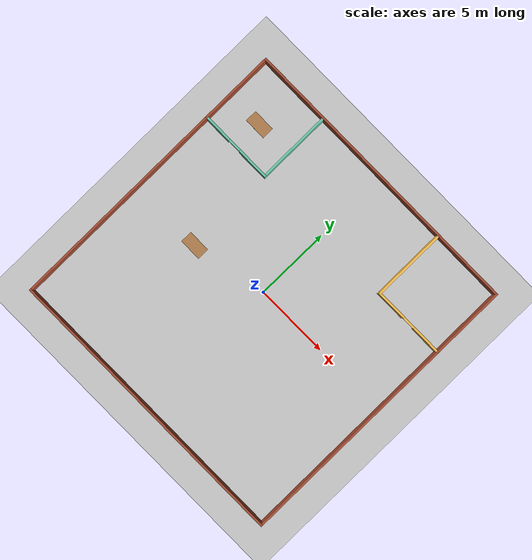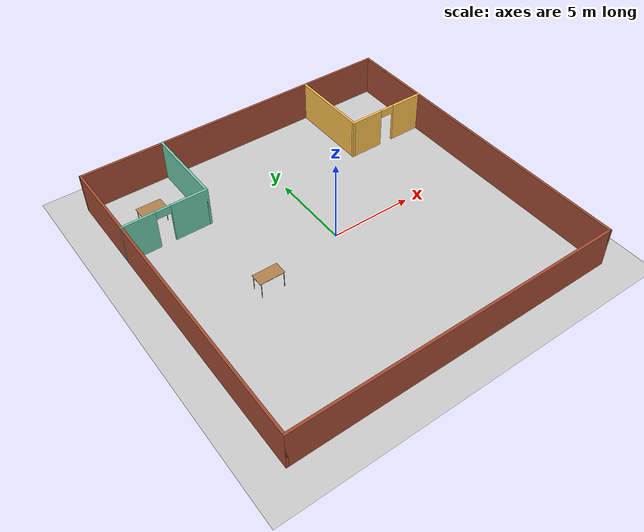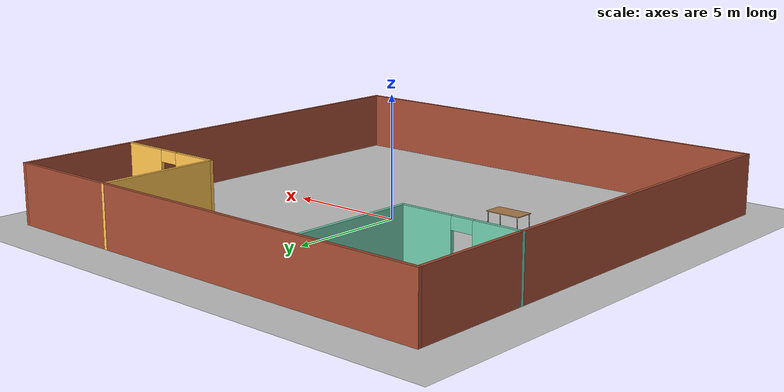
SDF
<sdf version="1.6">
 <world name="default">
  <model name="ground_plane">
   <static>1</static>
   <link name="link">
    <collision name="collision">
     <geometry><plane><normal>0 0 1</normal><size>100 100</size></plane></geometry>
     <surface><friction><ode><mu>100</mu><mu2>50</mu2></ode></friction></surface>
    </collision>
    <visual name="visual">
     <cast_shadows>0</cast_shadows>
     <geometry><plane><normal>0 0 1</normal><size>100 100</size></plane></geometry>
     <material>
      <script><uri>file://media/materials/scripts/gazebo.material</uri><name>Gazebo/Grey</name></script>
     </material>
    </visual>
   </link>
  </model>
  <model name="Building">
   <link name="Wall_10">
    <collision name="Wall_10_Collision">
     <geometry><box><size>20.15 0.15 2.5</size></box></geometry>
     <pose>0 0 1.25 0 -0 0</pose>
    </collision>
    <visual name="Wall_10_Visual">
     <pose>0 0 1.25 0 -0 0</pose>
     <geometry><box><size>20.15 0.15 2.5</size></box></geometry>
     <material>
      <script><uri>file://media/materials/scripts/gazebo.material</uri><name>Gazebo/Bricks</name></script>
      <ambient>1 1 1 1</ambient>
     </material>
     <meta><layer>0</layer></meta>
    </visual>
    <pose>0 -10 0 0 -0 0</pose>
   </link>
   <link name="Wall_11">
    <collision name="Wall_11_Collision">
     <geometry><box><size>20.15 0.15 2.5</size></box></geometry>
     <pose>0 0 1.25 0 -0 0</pose>
    </collision>
    <visual name="Wall_11_Visual">
     <pose>0 0 1.25 0 -0 0</pose>
     <geometry><box><size>20.15 0.15 2.5</size></box></geometry>
     <material>
      <script><uri>file://media/materials/scripts/gazebo.material</uri><name>Gazebo/Bricks</name></script>
      <ambient>1 1 1 1</ambient>
     </material>
     <meta><layer>0</layer></meta>
    </visual>
    <pose>10 0 0 0 -0 1.5708</pose>
   </link>
   <link name="Wall_12">
    <collision name="Wall_12_Collision">
     <geometry><box><size>20.15 0.15 2.5</size></box></geometry>
     <pose>0 0 1.25 0 -0 0</pose>
    </collision>
    <visual name="Wall_12_Visual">
     <pose>0 0 1.25 0 -0 0</pose>
     <geometry><box><size>20.15 0.15 2.5</size></box></geometry>
     <material>
      <script><uri>file://media/materials/scripts/gazebo.material</uri><name>Gazebo/Bricks</name></script>
      <ambient>1 1 1 1</ambient>
     </material>
     <meta><layer>0</layer></meta>
    </visual>
    <pose>0 10 0 0 -0 3.14159</pose>
   </link>
   <link name="Wall_13">
    <collision name="Wall_13_Collision">
     <geometry><box><size>20.15 0.15 2.5</size></box></geometry>
     <pose>0 0 1.25 0 -0 0</pose>
    </collision>
    <visual name="Wall_13_Visual">
     <pose>0 0 1.25 0 -0 0</pose>
     <geometry><box><size>20.15 0.15 2.5</size></box></geometry>
     <material>
      <script><uri>file://media/materials/scripts/gazebo.material</uri><name>Gazebo/Bricks</name></script>
      <ambient>1 1 1 1</ambient>
     </material>
     <meta><layer>0</layer></meta>
    </visual>
    <pose>-10 0 0 0 -0 -1.5708</pose>
   </link>
   <link name="Wall_2">
    <pose>7.5 5 0 0 -0 3.14159</pose>
    <visual name="Wall_2_Visual_0">
     <pose>-1.5125 0 1.25 0 -0 0</pose>
     <geometry><box><size>2.125 0.15 2.5</size></box></geometry>
     <material>
      <script><uri>file://media/materials/scripts/gazebo.material</uri><name>Gazebo/Grey</name></script>
      <ambient>1 0.764706 0.305882 1</ambient>
     </material>
     <meta><layer>0</layer></meta>
    </visual>
    <collision name="Wall_2_Collision_0">
     <geometry><box><size>2.125 0.15 2.5</size></box></geometry>
     <pose>-1.5125 0 1.25 0 -0 0</pose>
    </collision>
    <visual name="Wall_2_Visual_1">
     <pose>1.5125 0 1.25 0 -0 0</pose>
     <geometry><box><size>2.125 0.15 2.5</size></box></geometry>
     <material>
      <script><uri>file://media/materials/scripts/gazebo.material</uri><name>Gazebo/Grey</name></script>
      <ambient>1 0.764706 0.305882 1</ambient>
     </material>
     <meta><layer>0</layer></meta>
    </visual>
    <collision name="Wall_2_Collision_1">
     <geometry><box><size>2.125 0.15 2.5</size></box></geometry>
     <pose>1.5125 0 1.25 0 -0 0</pose>
    </collision>
    <visual name="Wall_2_Visual_2">
     <pose>-0 0 2.25 0 -0 0</pose>
     <geometry><box><size>0.9 0.15 0.5</size></box></geometry>
     <material>
      <script><uri>file://media/materials/scripts/gazebo.material</uri><name>Gazebo/Grey</name></script>
      <ambient>1 0.764706 0.305882 1</ambient>
     </material>
     <meta><layer>0</layer></meta>
    </visual>
    <collision name="Wall_2_Collision_2">
     <geometry><box><size>0.9 0.15 0.5</size></box></geometry>
     <pose>-0 0 2.25 0 -0 0</pose>
    </collision>
   </link>
   <link name="Wall_3">
    <collision name="Wall_3_Collision">
     <geometry><box><size>5.15 0.15 2.5</size></box></geometry>
     <pose>0 0 1.25 0 -0 0</pose>
    </collision>
    <visual name="Wall_3_Visual">
     <pose>0 0 1.25 0 -0 0</pose>
     <geometry><box><size>5.15 0.15 2.5</size></box></geometry>
     <material>
      <script><uri>file://media/materials/scripts/gazebo.material</uri><name>Gazebo/Grey</name></script>
      <ambient>1 0.764706 0.305882 1</ambient>
     </material>
     <meta><layer>0</layer></meta>
    </visual>
    <pose>5 7.5 0 0 -0 1.5708</pose>
   </link>
   <link name="Wall_6">
    <pose>-7.5 5 0 0 -0 0</pose>
    <visual name="Wall_6_Visual_0">
     <pose>-1.57098 0 1.25 0 -0 0</pose>
     <geometry><box><size>2.00805 0.15 2.5</size></box></geometry>
     <material>
      <script><uri>file://media/materials/scripts/gazebo.material</uri><name>Gazebo/Grey</name></script>
      <ambient>0.435294 0.796078 0.67451 1</ambient>
     </material>
     <meta><layer>0</layer></meta>
    </visual>
    <collision name="Wall_6_Collision_0">
     <geometry><box><size>2.00805 0.15 2.5</size></box></geometry>
     <pose>-1.57098 0 1.25 0 -0 0</pose>
    </collision>
    <visual name="Wall_6_Visual_1">
     <pose>1.45402 0 1.25 0 -0 0</pose>
     <geometry><box><size>2.24195 0.15 2.5</size></box></geometry>
     <material>
      <script><uri>file://media/materials/scripts/gazebo.material</uri><name>Gazebo/Grey</name></script>
      <ambient>0.435294 0.796078 0.67451 1</ambient>
     </material>
     <meta><layer>0</layer></meta>
    </visual>
    <collision name="Wall_6_Collision_1">
     <geometry><box><size>2.24195 0.15 2.5</size></box></geometry>
     <pose>1.45402 0 1.25 0 -0 0</pose>
    </collision>
    <visual name="Wall_6_Visual_2">
     <pose>-0.116954 0 2.25 0 -0 0</pose>
     <geometry><box><size>0.9 0.15 0.5</size></box></geometry>
     <material>
      <script><uri>file://media/materials/scripts/gazebo.material</uri><name>Gazebo/Grey</name></script>
      <ambient>0.435294 0.796078 0.67451 1</ambient>
     </material>
     <meta><layer>0</layer></meta>
    </visual>
    <collision name="Wall_6_Collision_2">
     <geometry><box><size>0.9 0.15 0.5</size></box></geometry>
     <pose>-0.116954 0 2.25 0 -0 0</pose>
    </collision>
   </link>
   <link name="Wall_7">
    <collision name="Wall_7_Collision">
     <geometry><box><size>5.15 0.15 2.5</size></box></geometry>
     <pose>0 0 1.25 0 -0 0</pose>
    </collision>
    <visual name="Wall_7_Visual">
     <pose>0 0 1.25 0 -0 0</pose>
     <geometry><box><size>5.15 0.15 2.5</size></box></geometry>
     <material>
      <script><uri>file://media/materials/scripts/gazebo.material</uri><name>Gazebo/Grey</name></script>
      <ambient>0.435294 0.796078 0.67451 1</ambient>
     </material>
     <meta><layer>0</layer></meta>
    </visual>
    <pose>-5 7.5 0 0 -0 1.5708</pose>
   </link>
   <static>1</static>
  </model>
  <model name="table_0">
   <static>1</static>
   <link name="link">
    <collision name="surface">
     <pose>0 0 1 0 -0 0</pose>
     <geometry><box><size>1.5 0.8 0.03</size></box></geometry>
     <surface><friction><ode><mu>0.6</mu><mu2>0.6</mu2></ode></friction></surface>
    </collision>
    <visual name="visual1">
     <pose>0 0 1 0 -0 0</pose>
     <geometry><box><size>1.5 0.8 0.03</size></box></geometry>
     <material>
      <script><uri>file://media/materials/scripts/gazebo.material</uri><name>Gazebo/Wood</name></script>
     </material>
    </visual>
    <collision name="front_left_leg">
     <pose>0.68 0.38 0.5 0 -0 0</pose>
     <geometry><cylinder><radius>0.02</radius><length>1</length></cylinder></geometry>
    </collision>
    <visual name="front_left_leg">
     <pose>0.68 0.38 0.5 0 -0 0</pose>
     <geometry><cylinder><radius>0.02</radius><length>1</length></cylinder></geometry>
     <material>
      <script><uri>file://media/materials/scripts/gazebo.material</uri><name>Gazebo/Grey</name></script>
     </material>
    </visual>
    <collision name="front_right_leg">
     <pose>0.68 -0.38 0.5 0 -0 0</pose>
     <geometry><cylinder><radius>0.02</radius><length>1</length></cylinder></geometry>
    </collision>
    <visual name="front_right_leg">
     <pose>0.68 -0.38 0.5 0 -0 0</pose>
     <geometry><cylinder><radius>0.02</radius><length>1</length></cylinder></geometry>
     <material>
      <script><uri>file://media/materials/scripts/gazebo.material</uri><name>Gazebo/Grey</name></script>
     </material>
    </visual>
    <collision name="back_right_leg">
     <pose>-0.68 -0.38 0.5 0 -0 0</pose>
     <geometry><cylinder><radius>0.02</radius><length>1</length></cylinder></geometry>
    </collision>
    <visual name="back_right_leg">
     <pose>-0.68 -0.38 0.5 0 -0 0</pose>
     <geometry><cylinder><radius>0.02</radius><length>1</length></cylinder></geometry>
     <material>
      <script><uri>file://media/materials/scripts/gazebo.material</uri><name>Gazebo/Grey</name></script>
     </material>
    </visual>
    <collision name="back_left_leg">
     <pose>-0.68 0.38 0.5 0 -0 0</pose>
     <geometry><cylinder><radius>0.02</radius><length>1</length></cylinder></geometry>
    </collision>
    <visual name="back_left_leg">
     <pose>-0.68 0.38 0.5 0 -0 0</pose>
     <geometry><cylinder><radius>0.02</radius><length>1</length></cylinder></geometry>
     <material>
      <script><uri>file://media/materials/scripts/gazebo.material</uri><name>Gazebo/Grey</name></script>
     </material>
    </visual>
   </link>
   <pose>-7.5 7 0 0 -0 0</pose>
  </model>
  <model name="table_clone_3">
   <static>1</static>
   <link name="link">
    <collision name="surface">
     <pose>0 0 1 0 -0 0</pose>
     <geometry><box><size>1.5 0.8 0.03</size></box></geometry>
     <surface><friction><ode><mu>0.6</mu><mu2>0.6</mu2></ode></friction></surface>
    </collision>
    <visual name="visual1">
     <pose>0 0 1 0 -0 0</pose>
     <geometry><box><size>1.5 0.8 0.03</size></box></geometry>
     <material>
      <script><uri>file://media/materials/scripts/gazebo.material</uri><name>Gazebo/Wood</name></script>
     </material>
    </visual>
    <collision name="front_left_leg">
     <pose>0.68 0.38 0.5 0 -0 0</pose>
     <geometry><cylinder><radius>0.02</radius><length>1</length></cylinder></geometry>
    </collision>
    <visual name="front_left_leg">
     <pose>0.68 0.38 0.5 0 -0 0</pose>
     <geometry><cylinder><radius>0.02</radius><length>1</length></cylinder></geometry>
     <material>
      <script><uri>file://media/materials/scripts/gazebo.material</uri><name>Gazebo/Grey</name></script>
     </material>
    </visual>
    <collision name="front_right_leg">
     <pose>0.68 -0.38 0.5 0 -0 0</pose>
     <geometry><cylinder><radius>0.02</radius><length>1</length></cylinder></geometry>
    </collision>
    <visual name="front_right_leg">
     <pose>0.68 -0.38 0.5 0 -0 0</pose>
     <geometry><cylinder><radius>0.02</radius><length>1</length></cylinder></geometry>
     <material>
      <script><uri>file://media/materials/scripts/gazebo.material</uri><name>Gazebo/Grey</name></script>
     </material>
    </visual>
    <collision name="back_right_leg">
     <pose>-0.68 -0.38 0.5 0 -0 0</pose>
     <geometry><cylinder><radius>0.02</radius><length>1</length></cylinder></geometry>
    </collision>
    <visual name="back_right_leg">
     <pose>-0.68 -0.38 0.5 0 -0 0</pose>
     <geometry><cylinder><radius>0.02</radius><length>1</length></cylinder></geometry>
     <material>
      <script><uri>file://media/materials/scripts/gazebo.material</uri><name>Gazebo/Grey</name></script>
     </material>
    </visual>
    <collision name="back_left_leg">
     <pose>-0.68 0.38 0.5 0 -0 0</pose>
     <geometry><cylinder><radius>0.02</radius><length>1</length></cylinder></geometry>
    </collision>
    <visual name="back_left_leg">
     <pose>-0.68 0.38 0.5 0 -0 0</pose>
     <geometry><cylinder><radius>0.02</radius><length>1</length></cylinder></geometry>
     <material>
      <script><uri>file://media/materials/scripts/gazebo.material</uri><name>Gazebo/Grey</name></script>
     </material>
    </visual>
   </link>
   <pose>-5 -1 0 0 -0 0</pose>
  </model>
 </world>
</sdf>
